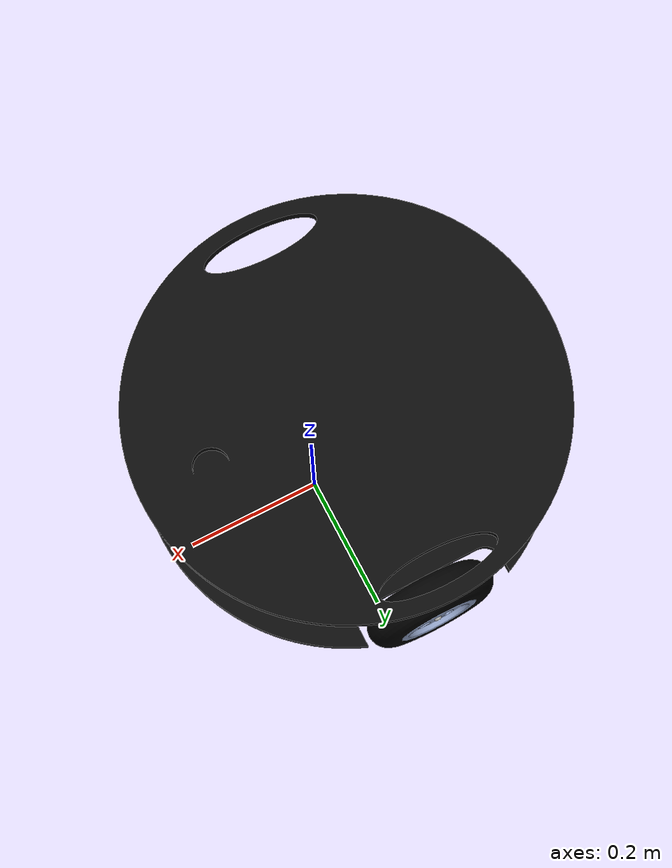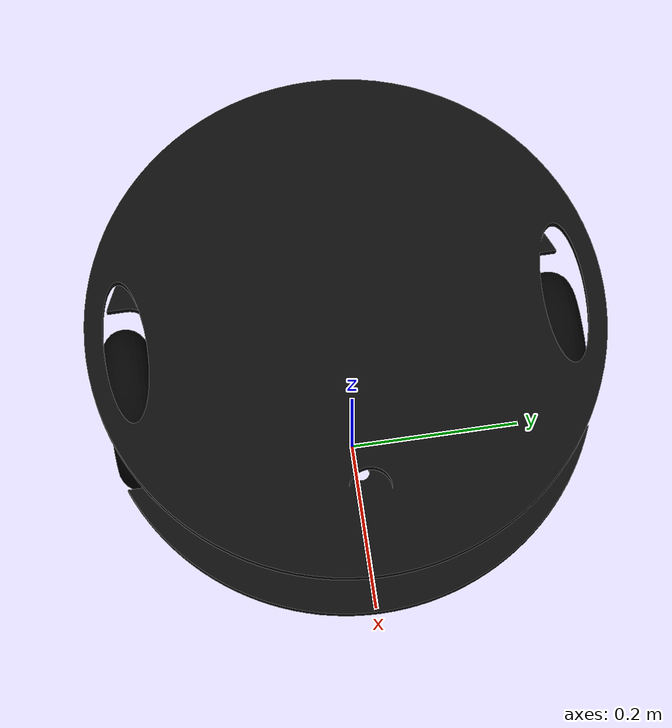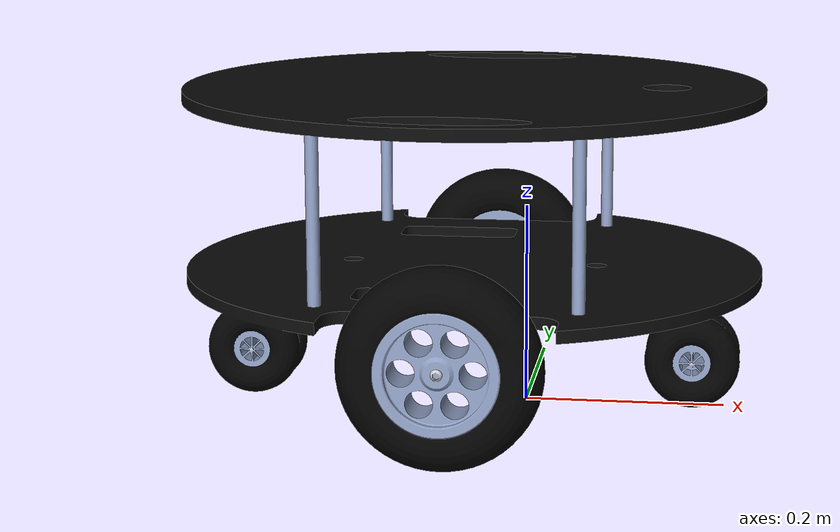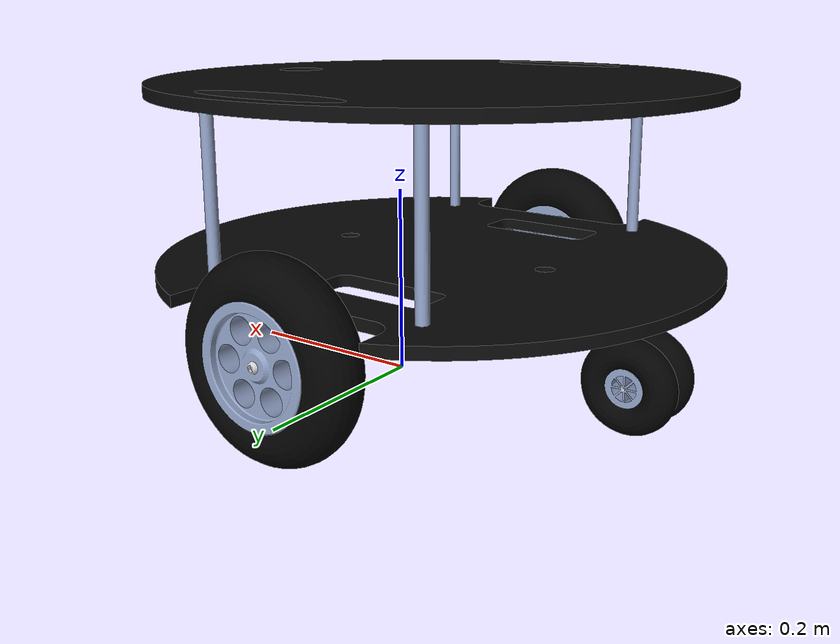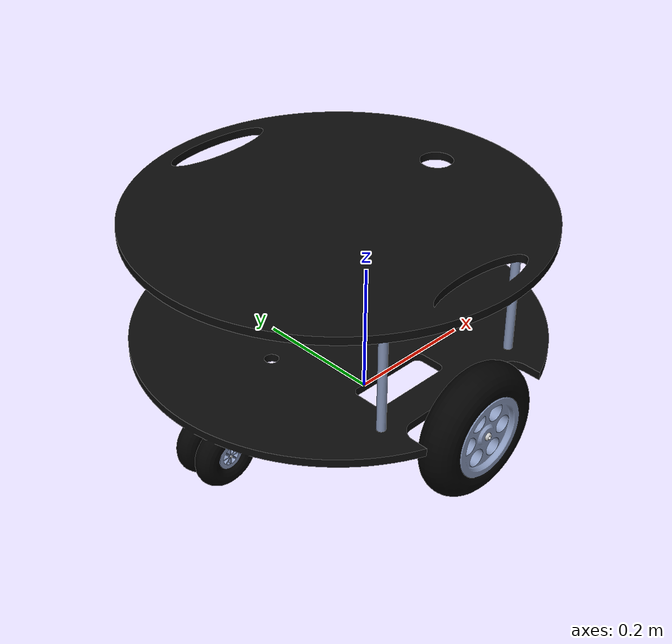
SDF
<?xml version='1.0'?>
<sdf version='1.6'>
  <model name='mini_xolobot'>

    <!--   DIEGO The base of the arlo robot base: lower and upper decks, and caster wheels (fixed)   -->
    <link name='link_base'>
      <inertial>
        <mass>10</mass>
        <inertia>
          <ixx>0.191043</ixx>
          <ixy>0</ixy>
          <ixz>0</ixz>
          <iyy>0.191043</iyy>
          <iyz>0</iyz>
          <izz>0.331905</izz>
        </inertia>
        <pose frame=''>0 0 0 0 0 0</pose>
      </inertial>
      <pose frame=''>-0.055242 0 0.153337 0 0 0</pose>
      <gravity>1</gravity>
      <self_collide>0</self_collide>
      <kinematic>0</kinematic>
      <enable_wind>0</enable_wind>
      <visual name='visual'>
        <pose frame=''>0 0 0 0 -0 0</pose>
        <geometry>
          <mesh>
            <uri>model://meshes/arlo_base_altura_ok.dae</uri>
            <scale>1 1 1</scale>
          </mesh>
        </geometry>
        <transparency>0</transparency>
        <cast_shadows>1</cast_shadows>
      </visual>
      <collision name='collision_base'>
        <laser_retro>0</laser_retro>
        <max_contacts>10</max_contacts>
        <pose frame=''>0 0 0.070880 0 -0 0</pose>
        <geometry>
          <cylinder>
            <radius>0.288056</radius>
            <length>0.194</length>
          </cylinder>
        </geometry>
        <surface>
          <friction>
            <ode>
              <mu>1</mu>
              <mu2>1</mu2>
              <fdir1>0 0 0</fdir1>
              <slip1>0</slip1>
              <slip2>0</slip2>
            </ode>
            <torsional>
              <coefficient>1</coefficient>
              <patch_radius>0</patch_radius>
              <surface_radius>0</surface_radius>
              <use_patch_radius>1</use_patch_radius>
              <ode>
                <slip>0</slip>
              </ode>
            </torsional>
          </friction>
          <bounce>
            <restitution_coefficient>0</restitution_coefficient>
            <threshold>1e+06</threshold>
          </bounce>
          <contact>
            <collide_without_contact>0</collide_without_contact>
            <collide_without_contact_bitmask>1</collide_without_contact_bitmask>
            <collide_bitmask>1</collide_bitmask>
            <ode>
              <soft_cfm>0</soft_cfm>
              <soft_erp>0.2</soft_erp>
              <kp>1e+13</kp>
              <kd>1</kd>
              <max_vel>0.01</max_vel>
              <min_depth>0</min_depth>
            </ode>
            <bullet>
              <split_impulse>1</split_impulse>
              <split_impulse_penetration_threshold>-0.01</split_impulse_penetration_threshold>
              <soft_cfm>0</soft_cfm>
              <soft_erp>0.2</soft_erp>
              <kp>1e+13</kp>
              <kd>1</kd>
            </bullet>
          </contact>
        </surface>
      </collision>
    </link>

    <!--    The caster wheel: an invisible sphere to simulate de real caster wheel. -->
    <link name='link_caster'>
      <inertial>
        <mass>0.8</mass>
        <inertia>
          <ixx>0.00043452</ixx>
          <ixy>0</ixy>
          <ixz>0</ixz>
          <iyy>0.00043452</iyy>
          <iyz>0</iyz>
          <izz>0.00043452</izz>
        </inertia>
        <pose frame=''>0 0 0 0 -0 0</pose>
      </inertial>
      <pose frame=''>0.167839 0 0.05 0 -0 0</pose>
      <gravity>1</gravity>
      <self_collide>0</self_collide>
      <kinematic>0</kinematic>
      <enable_wind>0</enable_wind>
      <visual name='visual'>
        <pose frame=''>0 0 0 0 0 0</pose>
        <geometry>
          <sphere>
            <radius>0.0466108</radius>
          </sphere>
        </geometry>
        <!--        This makes the sphere invisible -->
        <transparency>1</transparency>
        <cast_shadows>1</cast_shadows>
      </visual>
      <collision name='collision'>
        <laser_retro>0</laser_retro>
        <max_contacts>10</max_contacts>
        <pose frame=''>0 0 0 0 -0 0</pose>
        <geometry>
          <sphere>
            <radius>0.046611</radius>
          </sphere>
        </geometry>
        <surface>
          <friction>
            <ode>
              <mu>1</mu>
              <mu2>1</mu2>
              <fdir1>0 0 0</fdir1>
              <slip1>0</slip1>
              <slip2>0</slip2>
            </ode>
            <torsional>
              <coefficient>1</coefficient>
              <patch_radius>0</patch_radius>
              <surface_radius>0</surface_radius>
              <use_patch_radius>1</use_patch_radius>
              <ode>
                <slip>0</slip>
              </ode>
            </torsional>
          </friction>
          <bounce>
            <restitution_coefficient>0</restitution_coefficient>
            <threshold>1e+06</threshold>
          </bounce>
          <contact>
            <collide_without_contact>0</collide_without_contact>
            <collide_without_contact_bitmask>1</collide_without_contact_bitmask>
            <collide_bitmask>1</collide_bitmask>
            <ode>
              <soft_cfm>0</soft_cfm>
              <soft_erp>0.2</soft_erp>
              <kp>1e+13</kp>
              <kd>1</kd>
              <max_vel>0.01</max_vel>
              <min_depth>0</min_depth>
            </ode>
            <bullet>
              <split_impulse>1</split_impulse>
              <split_impulse_penetration_threshold>-0.01</split_impulse_penetration_threshold>
              <soft_cfm>0</soft_cfm>
              <soft_erp>0.2</soft_erp>
              <kp>1e+13</kp>
              <kd>1</kd>
            </bullet>
          </contact>
        </surface>
      </collision>
    </link>

    <!--    The back caster wheel: an invisible sphere to simulate de real caster wheel. -->
    <link name='link_caster_back'>
      <inertial>
        <mass>0.8</mass>
        <inertia>
          <ixx>0.00043452</ixx>
          <ixy>0</ixy>
          <ixz>0</ixz>
          <iyy>0.00043452</iyy>
          <iyz>0</iyz>
          <izz>0.00043452</izz>
        </inertia>
        <pose frame=''>0 0 0 0 -0 0</pose>
      </inertial>
      <pose frame=''>-0.278 0 0.05 0 -0 0</pose>
      <gravity>1</gravity>
      <self_collide>0</self_collide>
      <kinematic>0</kinematic>
      <enable_wind>0</enable_wind>
      <visual name='visual'>
        <pose frame=''>0 0 0 0 0 0</pose>
        <geometry>
          <sphere>
            <radius>0.0466108</radius>
          </sphere>
        </geometry>
        <!--        This makes the sphere invisible -->
        <transparency>1</transparency>
        <cast_shadows>1</cast_shadows>
      </visual>
      <collision name='collision'>
        <laser_retro>0</laser_retro>
        <max_contacts>10</max_contacts>
        <pose frame=''>0 0 0 0 -0 0</pose>
        <geometry>
          <sphere>
            <radius>0.046611</radius>
          </sphere>
        </geometry>
        <surface>
          <friction>
            <ode>
              <mu>1</mu>
              <mu2>1</mu2>
              <fdir1>0 0 0</fdir1>
              <slip1>0</slip1>
              <slip2>0</slip2>
            </ode>
            <torsional>
              <coefficient>1</coefficient>
              <patch_radius>0</patch_radius>
              <surface_radius>0</surface_radius>
              <use_patch_radius>1</use_patch_radius>
              <ode>
                <slip>0</slip>
              </ode>
            </torsional>
          </friction>
          <bounce>
            <restitution_coefficient>0</restitution_coefficient>
            <threshold>1e+06</threshold>
          </bounce>
          <contact>
            <collide_without_contact>0</collide_without_contact>
            <collide_without_contact_bitmask>1</collide_without_contact_bitmask>
            <collide_bitmask>1</collide_bitmask>
            <ode>
              <soft_cfm>0</soft_cfm>
              <soft_erp>0.2</soft_erp>
              <kp>1e+13</kp>
              <kd>1</kd>
              <max_vel>0.01</max_vel>
              <min_depth>0</min_depth>
            </ode>
            <bullet>
              <split_impulse>1</split_impulse>
              <split_impulse_penetration_threshold>-0.01</split_impulse_penetration_threshold>
              <soft_cfm>0</soft_cfm>
              <soft_erp>0.2</soft_erp>
              <kp>1e+13</kp>
              <kd>1</kd>
            </bullet>
          </contact>
        </surface>
      </collision>
    </link>

    <!--    The left wheel of the base-->
    <link name='link_wheel_left'>
      <inertial>
        <mass>1</mass>
        <inertia>
          <ixx>0.166667</ixx>
          <ixy>0</ixy>
          <ixz>0</ixz>
          <iyy>0.166667</iyy>
          <iyz>0</iyz>
          <izz>0.166667</izz>
        </inertia>
        <pose frame=''>0 0 0 0 -0 0</pose>
      </inertial>
      <pose frame=''>-0.053 0.251767 0.0978 0 -0 0</pose>
      <gravity>1</gravity>
      <self_collide>0</self_collide>
      <kinematic>0</kinematic>
      <enable_wind>0</enable_wind>
      <visual name='visual'>
        <pose frame=''>0 0 0 0 -0 0</pose>
        <geometry>
          <mesh>
            <uri>model://meshes/arlo_wheel_mejorado.dae</uri>
            <scale>1 1 1</scale>
          </mesh>
        </geometry>
        <transparency>0</transparency>
        <cast_shadows>1</cast_shadows>
      </visual>
      <collision name='collision'>
        <laser_retro>0</laser_retro>
        <max_contacts>10</max_contacts>
        <pose frame=''>0 0 0 0 -0 0</pose>
        <geometry>
          <mesh>
            <uri>model://meshes/arlo_wheel_mejorado.dae</uri>
            <scale>1 1 1</scale>
          </mesh>
        </geometry>
        <surface>
          <friction>
            <ode>
              <mu>1</mu>
              <mu2>1</mu2>
              <fdir1>0 0 0</fdir1>
              <slip1>0</slip1>
              <slip2>0</slip2>
            </ode>
            <torsional>
              <coefficient>1</coefficient>
              <patch_radius>0</patch_radius>
              <surface_radius>0</surface_radius>
              <use_patch_radius>1</use_patch_radius>
              <ode>
                <slip>0</slip>
              </ode>
            </torsional>
          </friction>
          <bounce>
            <restitution_coefficient>0</restitution_coefficient>
            <threshold>1e+06</threshold>
          </bounce>
          <contact>
            <collide_without_contact>0</collide_without_contact>
            <collide_without_contact_bitmask>1</collide_without_contact_bitmask>
            <collide_bitmask>1</collide_bitmask>
            <ode>
              <soft_cfm>0</soft_cfm>
              <soft_erp>0.2</soft_erp>
              <kp>1e+13</kp>
              <kd>1</kd>
              <max_vel>0.01</max_vel>
              <min_depth>0</min_depth>
            </ode>
            <bullet>
              <split_impulse>1</split_impulse>
              <split_impulse_penetration_threshold>-0.01</split_impulse_penetration_threshold>
              <soft_cfm>0</soft_cfm>
              <soft_erp>0.2</soft_erp>
              <kp>1e+13</kp>
              <kd>1</kd>
            </bullet>
          </contact>
        </surface>
      </collision>
    </link>

    <!--    The right wheel of the base -->
    <link name='link_wheel_right'>
      <inertial>
        <mass>1</mass>
        <inertia>
          <ixx>0.166667</ixx>
          <ixy>0</ixy>
          <ixz>0</ixz>
          <iyy>0.166667</iyy>
          <iyz>0</iyz>
          <izz>0.166667</izz>
        </inertia>
        <pose frame=''>0 0 0 0 -0 0</pose>
      </inertial>
      <pose frame=''>-0.053 -0.251767 0.0978 0 0 -3.13728</pose>
      <gravity>1</gravity>
      <self_collide>0</self_collide>
      <kinematic>0</kinematic>
      <enable_wind>0</enable_wind>
      <visual name='visual'>
        <pose frame=''>0 0 0 0 -0 0</pose>
        <geometry>
          <mesh>
            <uri>model://meshes/arlo_wheel_mejorado.dae</uri>
            <scale>1 1 1</scale>
          </mesh>
        </geometry>
        <transparency>0</transparency>
        <cast_shadows>1</cast_shadows>
        <material>
          <shader type='pixel' />
          <emissive>0 0 0 1</emissive>
        </material>
      </visual>
      <collision name='collision'>
        <laser_retro>0</laser_retro>
        <max_contacts>10</max_contacts>
        <pose frame=''>0 0 0 0 -0 0</pose>
        <geometry>
          <mesh>
            <uri>model://meshes/arlo_wheel_mejorado.dae</uri>
            <scale>1 1 1</scale>
          </mesh>
        </geometry>
        <surface>
          <friction>
            <ode>
              <mu>1</mu>
              <mu2>1</mu2>
              <fdir1>0 0 0</fdir1>
              <slip1>0</slip1>
              <slip2>0</slip2>
            </ode>
            <torsional>
              <coefficient>1</coefficient>
              <patch_radius>0</patch_radius>
              <surface_radius>0</surface_radius>
              <use_patch_radius>1</use_patch_radius>
              <ode>
                <slip>0</slip>
              </ode>
            </torsional>
          </friction>
          <bounce>
            <restitution_coefficient>0</restitution_coefficient>
            <threshold>1e+06</threshold>
          </bounce>
          <contact>
            <collide_without_contact>0</collide_without_contact>
            <collide_without_contact_bitmask>1</collide_without_contact_bitmask>
            <collide_bitmask>1</collide_bitmask>
            <ode>
              <soft_cfm>0</soft_cfm>
              <soft_erp>0.2</soft_erp>
              <kp>1e+13</kp>
              <kd>1</kd>
              <max_vel>0.01</max_vel>
              <min_depth>0</min_depth>
            </ode>
            <bullet>
              <split_impulse>1</split_impulse>
              <split_impulse_penetration_threshold>-0.01</split_impulse_penetration_threshold>
              <soft_cfm>0</soft_cfm>
              <soft_erp>0.2</soft_erp>
              <kp>1e+13</kp>
              <kd>1</kd>
            </bullet>
          </contact>
        </surface>
      </collision>
    </link>

    <joint name='link_base_JOINT_caster' type='ball'>
      <parent>link_base</parent>
      <child>link_caster</child>
      <pose frame=''>0 0 0 0 -0 0</pose>
      <physics>
        <ode>
          <limit>
            <cfm>0</cfm>
            <erp>0.2</erp>
          </limit>
          <suspension>
            <cfm>0</cfm>
            <erp>0.2</erp>
          </suspension>
        </ode>
      </physics>
    </joint>
    <joint name='link_base_JOINT_caster_back' type='ball'>
      <parent>link_base</parent>
      <child>link_caster_back</child>
      <pose frame=''>0 0 0 0 -0 0</pose>
      <physics>
        <ode>
          <limit>
            <cfm>0</cfm>
            <erp>0.2</erp>
          </limit>
          <suspension>
            <cfm>0</cfm>
            <erp>0.2</erp>
          </suspension>
        </ode>
      </physics>
    </joint>
    <joint name='link_base_JOINT_wheel_left' type='revolute'>
      <parent>link_base</parent>
      <child>link_wheel_left</child>
      <pose frame=''>0 0 0 0 -0 0</pose>
      <axis>
        <xyz>0 1 0</xyz>
        <use_parent_model_frame>0</use_parent_model_frame>
        <limit>
          <lower>-1.79769e+308</lower>
          <upper>1.79769e+308</upper>
          <effort>-1</effort>
          <velocity>-1</velocity>
        </limit>
        <dynamics>
          <spring_reference>0</spring_reference>
          <spring_stiffness>0</spring_stiffness>
          <damping>0</damping>
          <friction>0</friction>
        </dynamics>
      </axis>
      <physics>
        <ode>
          <limit>
            <cfm>0</cfm>
            <erp>0.2</erp>
          </limit>
          <suspension>
            <cfm>0</cfm>
            <erp>0.2</erp>
          </suspension>
        </ode>
      </physics>
    </joint>
    <joint name='link_base_JOINT_wheel_right' type='revolute'>
      <parent>link_base</parent>
      <child>link_wheel_right</child>
      <pose frame=''>0 0 0 0 -0 0</pose>
      <axis>
        <xyz>0 -1 0</xyz>
        <use_parent_model_frame>0</use_parent_model_frame>
        <limit>
          <lower>-1.79769e+308</lower>
          <upper>1.79769e+308</upper>
          <effort>-1</effort>
          <velocity>-1</velocity>
        </limit>
        <dynamics>
          <spring_reference>0</spring_reference>
          <spring_stiffness>0</spring_stiffness>
          <damping>0</damping>
          <friction>0</friction>
        </dynamics>
      </axis>
      <physics>
        <ode>
          <limit>
            <cfm>0</cfm>
            <erp>0.2</erp>
          </limit>
          <suspension>
            <cfm>0</cfm>
            <erp>0.2</erp>
          </suspension>
        </ode>
      </physics>
    </joint>
    <static>0</static>
    <allow_auto_disable>1</allow_auto_disable>

      <plugin
        filename="libignition-gazebo-diff-drive-system.so"
        name="ignition::gazebo::systems::DiffDrive">
        <left_joint>link_base_JOINT_wheel_left</left_joint>
        <right_joint>link_base_JOINT_wheel_right</right_joint>
        <wheel_separation>0.5</wheel_separation>
        <wheel_radius>0.048</wheel_radius>
        <odom_publish_frequency>1</odom_publish_frequency>
      </plugin>

  </model>
</sdf>
